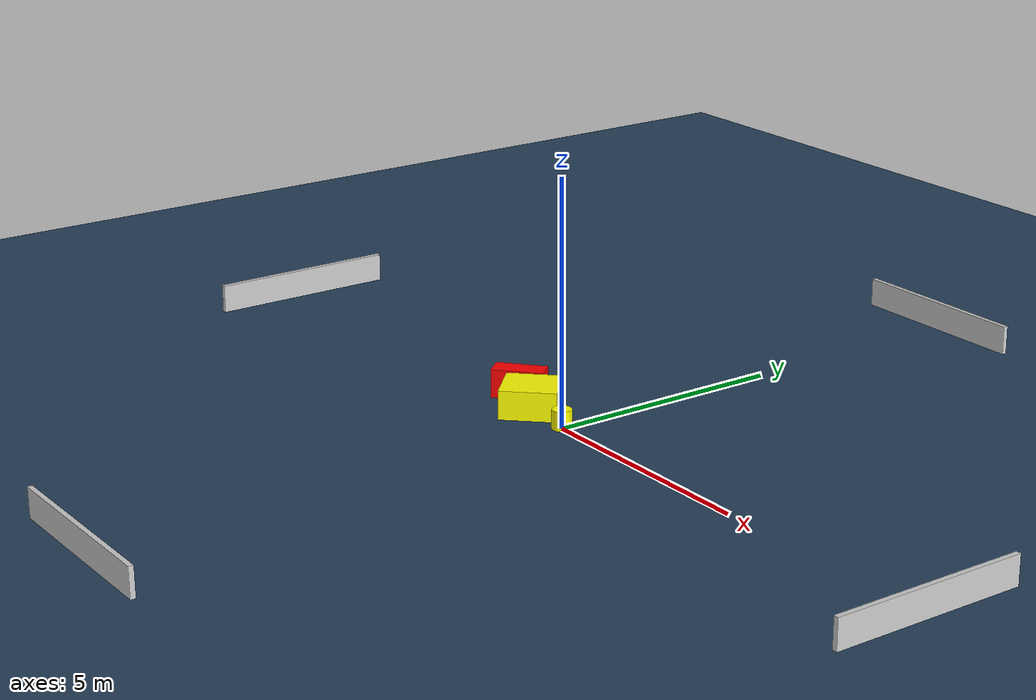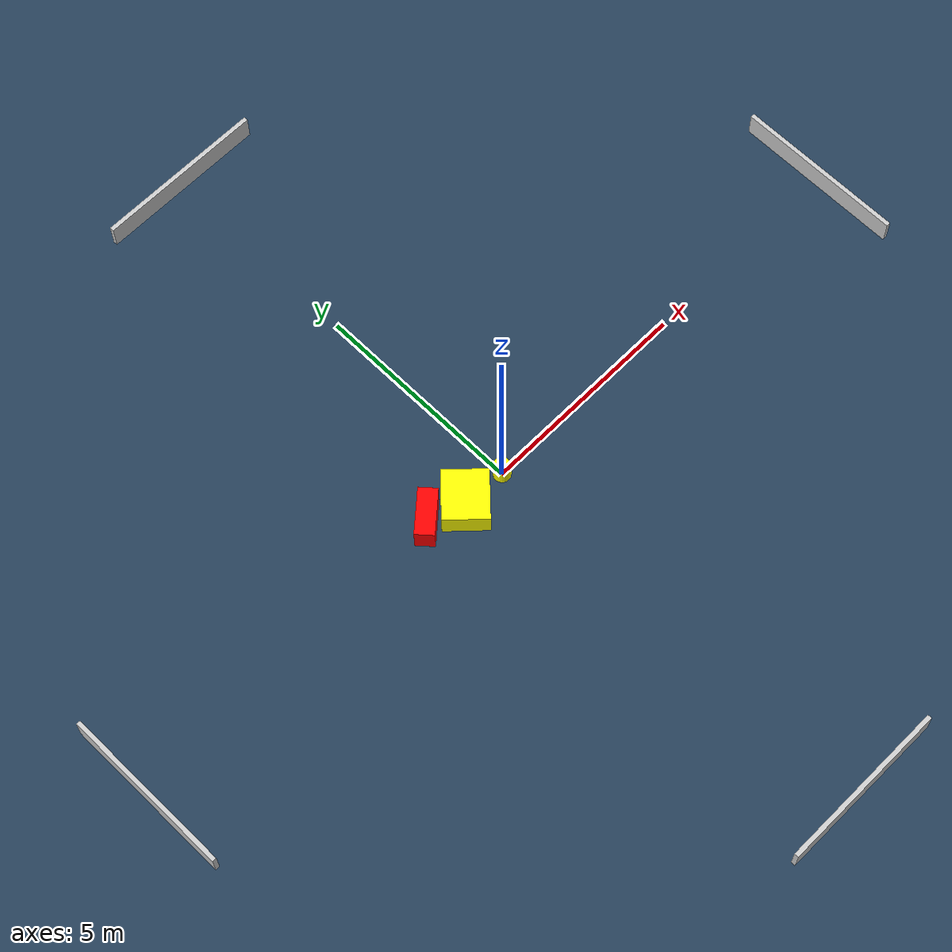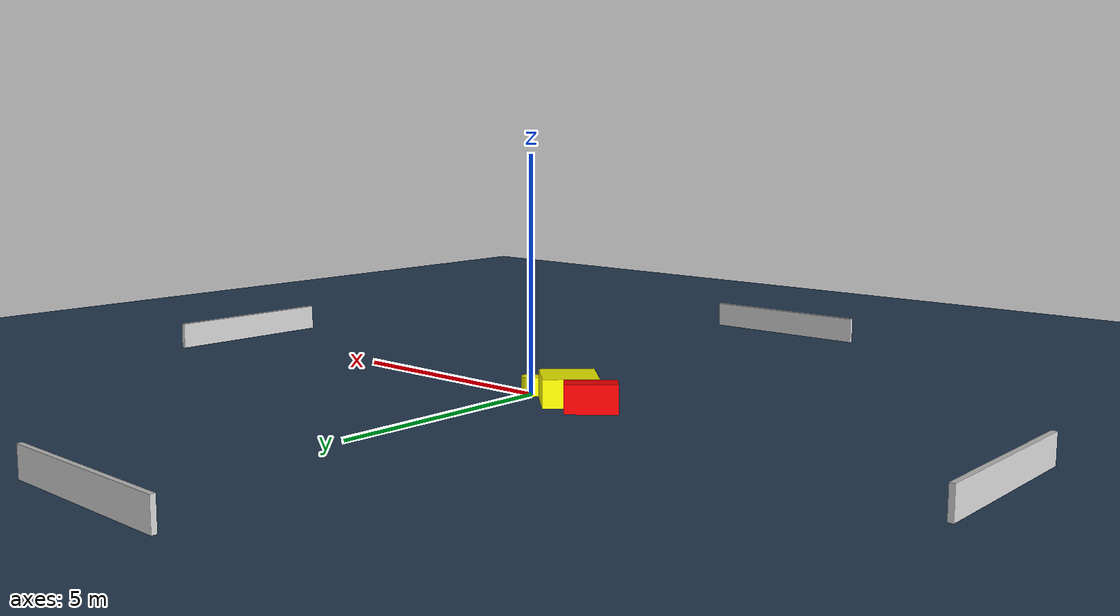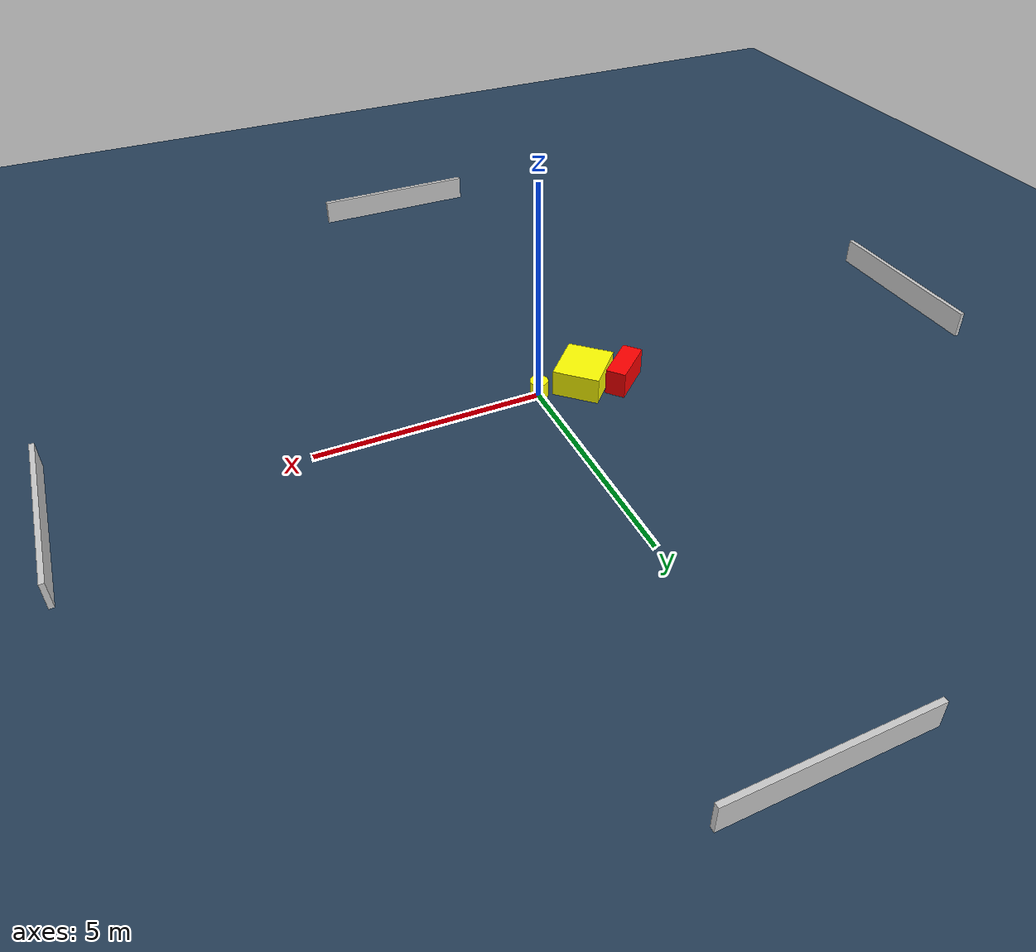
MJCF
<?xml version="1.0" ?>
<mujoco model="generated_environment">
  <option timestep="0.01" integrator="RK4" cone="elliptic"/>
  <default>
    <geom density="1"/>
  </default>
  <asset>
    <texture builtin="gradient" height="3072" name="skybox" rgb1="0.3 0.5 0.7" rgb2="0 0 0" type="skybox" width="512"/>
    <texture builtin="checker" height="300" name="groundplane" rgb1="0.2 0.3 0.4" rgb2="0.1 0.2 0.3" type="2d" width="300"/>
    <material name="groundplane" reflectance="0.2" texrepeat="5 5" texture="groundplane"/>
  </asset>
  <worldbody>
    <light dir="0 0 -1" directional="true" pos="0 0 1.5"/>
    <geom condim="3" friction="0.5 0.005 0.001" material="groundplane" name="floor" pos="0 0 0" size="0 0 0.05" type="plane"/>
    <body name="walls">
      <geom name="wall_1" condim="4" pos="-10.0 0.0 0.3" rgba="0.800000011920929 0.800000011920929 0.800000011920929 1.0" size="0.05 2.0 0.3" type="box"/>
      <geom name="wall_2" condim="4" pos="10.0 0.0 0.3" rgba="0.800000011920929 0.800000011920929 0.800000011920929 1.0" size="0.05 2.0 0.3" type="box"/>
      <geom name="wall_3" condim="4" pos="0.0 -10.0 0.3" rgba="0.800000011920929 0.800000011920929 0.800000011920929 1.0" size="2.0 0.05 0.3" type="box"/>
      <geom name="wall_4" condim="4" pos="0.0 10.0 0.3" rgba="0.800000011920929 0.800000011920929 0.800000011920929 1.0" size="2.0 0.05 0.3" type="box"/>
    </body>
    <body name="robot">
      <joint name="joint_x" type="slide" pos="0 0 0" axis="1 0 0"/>
      <joint name="joint_y" type="slide" pos="0 0 0" axis="0 1 0"/>
      <geom name="robot" type="cylinder" pos="0.0 0.0 0.2" size="0.2 0.2 0.0" mass="5.0" friction="1.0 0.005 0.0001" condim="4" rgba="1.0 1.0 0.0 1.0"/>
    </body>
    <body name="obstacle_1_movable">
      <geom name="obstacle_1_movable" condim="4" pos="-1.0585897180895267 0.02632633190664376 0.3" euler="0 0 136.13475455578174" friction="0.0 0.005 0.001" rgba="1.0 1.0 0.0 1.0" size="0.5151839130752385 0.5761645941567908 0.3" type="box" mass="0.1"/>
      <joint type="free"/>
    </body>
    <body name="obstacle_2_static">
      <geom name="obstacle_2_static" condim="4" pos="-1.9022920600555706 0.33392842627169017 0.3" euler="0 0 41.102997528857955" friction="0.0 0.005 0.001" rgba="1.0 0.0 0.0 1.0" size="0.5366468591979925 0.2207728666692158 0.3" type="box"/>
    </body>
  </worldbody>
  <actuator>
    <motor name="actuator_x" joint="joint_x" gear="1" ctrlrange="-1 1"/>
    <motor name="actuator_y" joint="joint_y" gear="1" ctrlrange="-1 1"/>
  </actuator>
</mujoco>
